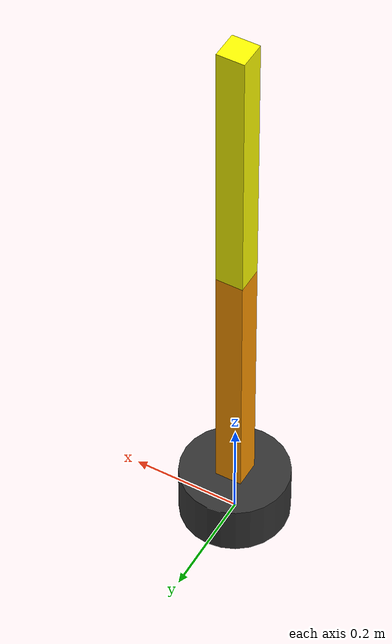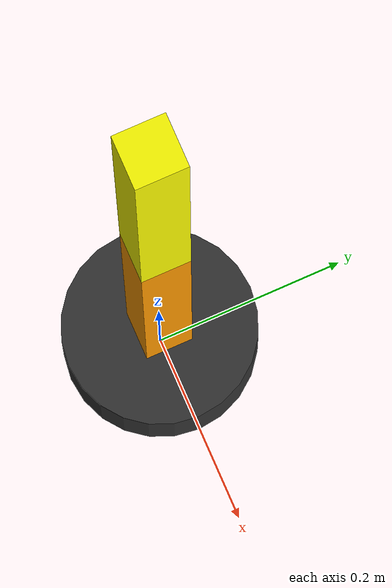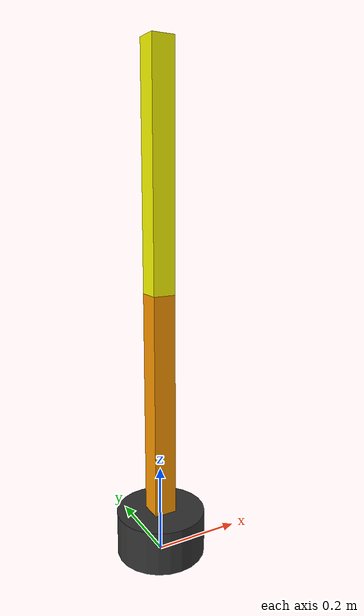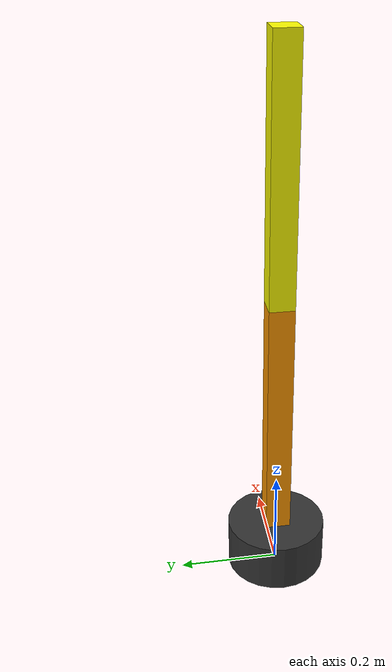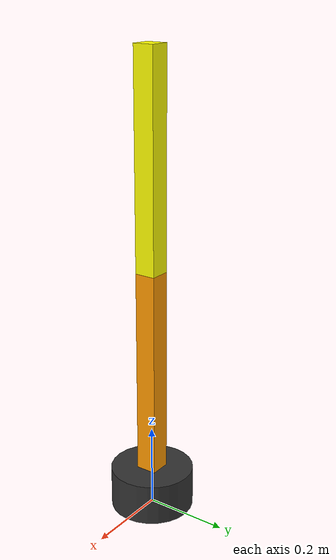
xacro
<?xml version="1.0"?>
<robot xmlns:xacro="http://www.ros.org/wiki/xacro" name="two_dof_arm">

  <xacro:property name="base_radius" value="0.1"/>
  <xacro:property name="base_height" value="0.1"/>
  <xacro:property name="link_len" value="0.5"/>
  <xacro:property name="link_width" value="0.05"/>
  <xacro:property name="link_mass" value="1.0"/>

  <xacro:macro name="box_inertia" params="m w h d">
    <inertial>
      <mass value="${m}"/>
      <inertia ixx="${(m/12) * (h*h + d*d)}" ixy="0.0" ixz="0.0"
               iyy="${(m/12) * (w*w + d*d)}" iyz="0.0"
               izz="${(m/12) * (w*w + h*h)}"/>
    </inertial>
  </xacro:macro>

  <xacro:macro name="cylinder_inertia" params="m r h">
    <inertial>
      <mass value="${m}"/>
      <inertia ixx="${(m/12) * (3*r*r + h*h)}" ixy="0.0" ixz="0.0"
               iyy="${(m/12) * (3*r*r + h*h)}" iyz="0.0"
               izz="${(m/2) * (r*r)}"/>
    </inertial>
  </xacro:macro>

  <xacro:macro name="arm_link_macro" params="name color_name r g b">
    <link name="${name}">
      <visual>
        <geometry>
          <box size="${link_width} ${link_width} ${link_len}"/>
        </geometry>
        <origin xyz="0 0 ${link_len/2}" rpy="0 0 0"/>
        <material name="${color_name}">
          <color rgba="${r} ${g} ${b} 1"/>
        </material>
      </visual>

      <collision>
        <geometry>
          <box size="${link_width} ${link_width} ${link_len}"/>
        </geometry>
        <origin xyz="0 0 ${link_len/2}" rpy="0 0 0"/>
      </collision>

      <xacro:box_inertia m="${link_mass}" w="${link_width}" h="${link_len}" d="${link_width}"/>
    </link>
  </xacro:macro>

  <!-- trouble shooting: Dummy Link 및 가상 고정 장치 추가-->

  <link name="base_link">
    <visual>
      <geometry>
        <cylinder length="${base_height}" radius="${base_radius}"/>
      </geometry>
      <origin xyz="0 0 ${base_height/2}" rpy="0 0 0"/>
      <material name="gray"><color rgba="0.2 0.2 0.2 1"/></material>
    </visual>
    <collision>
      <geometry><cylinder length="${base_height}" radius="${base_radius}"/></geometry>
      <origin xyz="0 0 ${base_height/2}" rpy="0 0 0"/>
    </collision>
    <xacro:cylinder_inertia m="10.0" r="${base_radius}" h="${base_height}"/>
  </link>

  <xacro:arm_link_macro name="link1" color_name="orange" r="1" g="0.6" b="0"/>

  <joint name="joint1" type="revolute">
    <parent link="base_link"/>
    <child link="link1"/>
    <origin xyz="0 0 ${base_height}" rpy="0 0 0"/>
    <axis xyz="0 0 1"/>
    <limit lower="-3.14" upper="3.14" effort="100" velocity="1.0"/>
    <dynamics damping="0.1" friction="0.05"/>
  </joint>

  <xacro:arm_link_macro name="link2" color_name="yellow" r="1" g="1" b="0"/>

  <joint name="joint2" type="revolute">
    <parent link="link1"/>
    <child link="link2"/>
    <origin xyz="0 0 ${link_len}" rpy="0 0 0"/>
    <axis xyz="0 1 0"/>
    <limit lower="-1.57" upper="1.57" effort="100" velocity="1.0"/>
    <dynamics damping="0.1" friction="0.05"/>
  </joint>

  <gazebo>
    <plugin filename="gz-sim-joint-state-publisher-system"
            name="gz::sim::systems::JointStatePublisher">
      <!-- 센서 측정값 관찰 실습용 50 Hz. 제어 물리 step(1ms)과 별도임. -->
      <update_rate>50</update_rate>
      <joint_name>joint1</joint_name>
      <joint_name>joint2</joint_name>
    </plugin>

    <plugin filename="gz-sim-joint-position-controller-system"
            name="gz::sim::systems::JointPositionController">
      <joint_name>joint1</joint_name>
      <topic>/model/my_robot/joint1/cmd_pos</topic>

      <p_gain>1000</p_gain>
      <i_gain>0.1</i_gain>
      <d_gain>10.0</d_gain>
      <i_max>1</i_max>
      <i_min>-1</i_min>
      <cmd_max>100</cmd_max>
      <cmd_min>-100</cmd_min>

      <initial_position>0.0</initial_position>
    </plugin>

    <plugin filename="gz-sim-joint-position-controller-system"
            name="gz::sim::systems::JointPositionController">
      <joint_name>joint2</joint_name>
      <topic>/model/my_robot/joint2/cmd_pos</topic>

      <p_gain>500</p_gain>
      <i_gain>0.1</i_gain>
      <d_gain>5.0</d_gain>
      <i_max>5.0</i_max>
      <i_min>-5.0</i_min>
      <cmd_max>100.0</cmd_max>
      <cmd_min>-100.0</cmd_min>

      <initial_position>0.0</initial_position>
    </plugin>
  </gazebo>

</robot>
